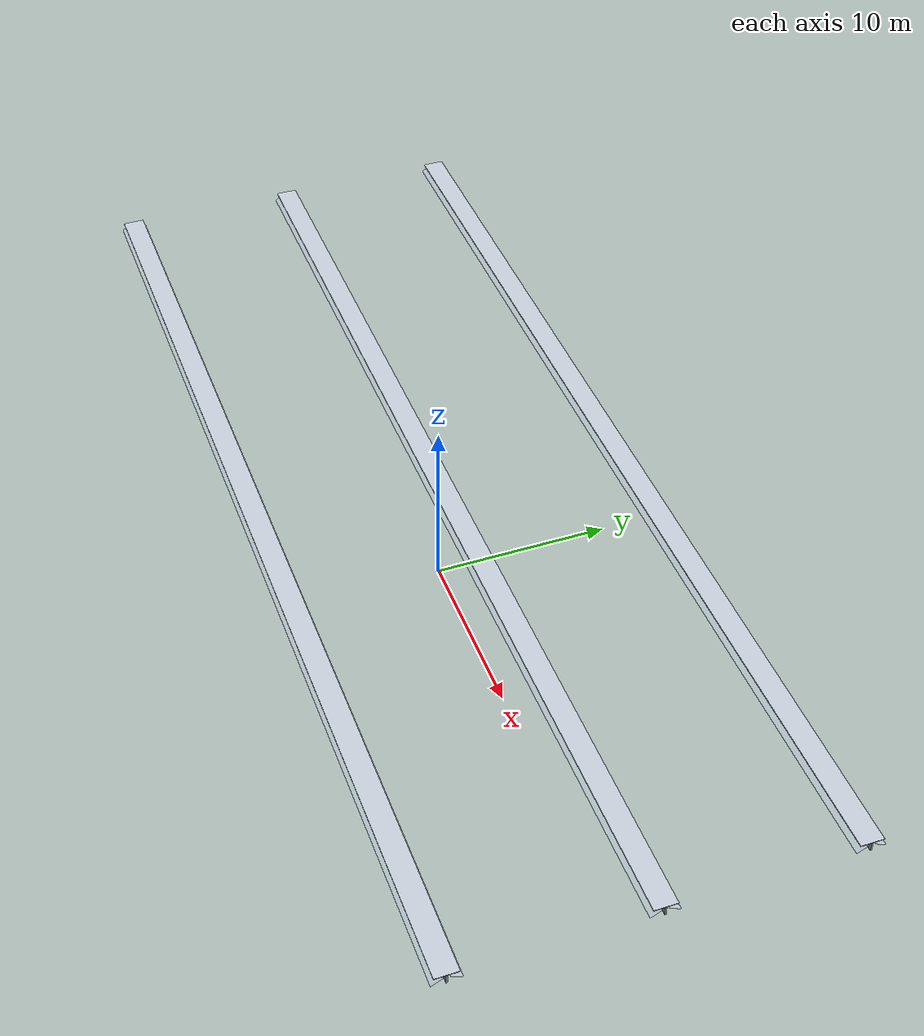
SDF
<?xml version="1.0" ?>
<sdf version="1.9">
  <model name="rooftop_ventilation">
    <static>true</static>

    <link name="ventilation_structure">
      <pose>0 0 0 0 0 0</pose>

      <!-- Bay 1 Ridge Vent (Y = -10.0m, Z = 6.5m - 7.1m)           -->
      <!-- Vent Cap Cover -->
      <visual name="bay1_vent_cap">
        <pose>0 -10.0 7.05 0 0 0</pose>
        <geometry><box><size>58.0 1.2 0.05</size></box></geometry>
        <material><ambient>0.7 0.75 0.8 1</ambient><diffuse>0.78 0.82 0.86 1</diffuse><specular>0.6 0.6 0.6 1</specular></material>
      </visual>
      <!-- South Vent Flap / Louver Opening (slanted) -->
      <visual name="bay1_vent_flap_south">
        <pose>0 -10.45 6.75 0.52 0 0</pose>
        <geometry><box><size>58.0 0.65 0.03</size></box></geometry>
        <material><ambient>0.82 0.9 0.95 0.6</ambient><diffuse>0.85 0.92 0.98 0.6</diffuse></material>
      </visual>
      <!-- North Vent Flap / Louver Opening (slanted) -->
      <visual name="bay1_vent_flap_north">
        <pose>0 -9.55 6.75 -0.52 0 0</pose>
        <geometry><box><size>58.0 0.65 0.03</size></box></geometry>
        <material><ambient>0.82 0.9 0.95 0.6</ambient><diffuse>0.85 0.92 0.98 0.6</diffuse></material>
      </visual>
      <!-- Vent Support Posts -->
      <visual name="bay1_vent_posts">
        <pose>0 -10.0 6.75 0 0 0</pose>
        <geometry><box><size>58.0 0.08 0.5</size></box></geometry>
        <material><ambient>0.4 0.45 0.5 1</ambient><diffuse>0.5 0.55 0.6 1</diffuse></material>
      </visual>

      <!-- Bay 2 Ridge Vent (Y = 0.0m, Z = 6.5m - 7.1m)             -->
      <!-- Vent Cap Cover -->
      <visual name="bay2_vent_cap">
        <pose>0 0.0 7.05 0 0 0</pose>
        <geometry><box><size>58.0 1.2 0.05</size></box></geometry>
        <material><ambient>0.7 0.75 0.8 1</ambient><diffuse>0.78 0.82 0.86 1</diffuse><specular>0.6 0.6 0.6 1</specular></material>
      </visual>
      <!-- South Vent Flap / Louver Opening -->
      <visual name="bay2_vent_flap_south">
        <pose>0 -0.45 6.75 0.52 0 0</pose>
        <geometry><box><size>58.0 0.65 0.03</size></box></geometry>
        <material><ambient>0.82 0.9 0.95 0.6</ambient><diffuse>0.85 0.92 0.98 0.6</diffuse></material>
      </visual>
      <!-- North Vent Flap / Louver Opening -->
      <visual name="bay2_vent_flap_north">
        <pose>0 0.45 6.75 -0.52 0 0</pose>
        <geometry><box><size>58.0 0.65 0.03</size></box></geometry>
        <material><ambient>0.82 0.9 0.95 0.6</ambient><diffuse>0.85 0.92 0.98 0.6</diffuse></material>
      </visual>
      <!-- Vent Support Posts -->
      <visual name="bay2_vent_posts">
        <pose>0 0.0 6.75 0 0 0</pose>
        <geometry><box><size>58.0 0.08 0.5</size></box></geometry>
        <material><ambient>0.4 0.45 0.5 1</ambient><diffuse>0.5 0.55 0.6 1</diffuse></material>
      </visual>

      <!-- Bay 3 Ridge Vent (Y = 10.0m, Z = 6.5m - 7.1m)            -->
      <!-- Vent Cap Cover -->
      <visual name="bay3_vent_cap">
        <pose>0 10.0 7.05 0 0 0</pose>
        <geometry><box><size>58.0 1.2 0.05</size></box></geometry>
        <material><ambient>0.7 0.75 0.8 1</ambient><diffuse>0.78 0.82 0.86 1</diffuse><specular>0.6 0.6 0.6 1</specular></material>
      </visual>
      <!-- South Vent Flap / Louver Opening -->
      <visual name="bay3_vent_flap_south">
        <pose>0 9.55 6.75 0.52 0 0</pose>
        <geometry><box><size>58.0 0.65 0.03</size></box></geometry>
        <material><ambient>0.82 0.9 0.95 0.6</ambient><diffuse>0.85 0.92 0.98 0.6</diffuse></material>
      </visual>
      <!-- North Vent Flap / Louver Opening -->
      <visual name="bay3_vent_flap_north">
        <pose>0 10.45 6.75 -0.52 0 0</pose>
        <geometry><box><size>58.0 0.65 0.03</size></box></geometry>
        <material><ambient>0.82 0.9 0.95 0.6</ambient><diffuse>0.85 0.92 0.98 0.6</diffuse></material>
      </visual>
      <!-- Vent Support Posts -->
      <visual name="bay3_vent_posts">
        <pose>0 10.0 6.75 0 0 0</pose>
        <geometry><box><size>58.0 0.08 0.5</size></box></geometry>
        <material><ambient>0.4 0.45 0.5 1</ambient><diffuse>0.5 0.55 0.6 1</diffuse></material>
      </visual>

    </link>
  </model>
</sdf>
